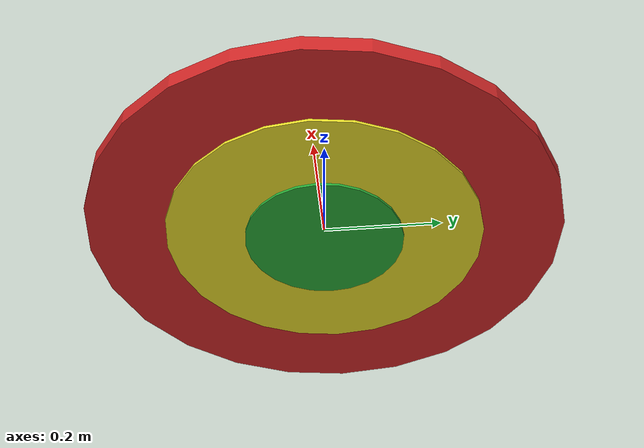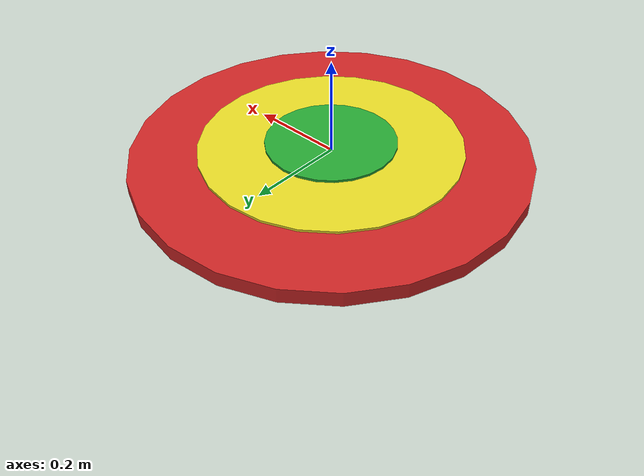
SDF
<?xml version='1.0'?>
<sdf version='1.6'>
  <model name='Target'>
    <link name='green'>
      <pose frame=''>0 0 0 0 -0 0</pose>
      <self_collide>0</self_collide>
      <enable_wind>0</enable_wind>
      <kinematic>0</kinematic>
      <visual name='visual'>
        <geometry>
          <cylinder>
            <radius>0.135027</radius>
            <length>0.05</length>
          </cylinder>
        </geometry>
        <material>
          <script>
            <uri>file://media/materials/scripts/gazebo.material</uri>
            <name>Gazebo/Green</name>
          </script>
          <ambient>1 1 1 1</ambient>
          <shader type='pixel'/>
        </material>
        <cast_shadows>0</cast_shadows>
        <transparency>0</transparency>
        <pose frame=''>0 0 0 0 -0 0</pose>
      </visual>
    </link>
    <link name='red'>
      <pose frame=''>0 0 0 0 -0 0</pose>
      <self_collide>0</self_collide>
      <enable_wind>0</enable_wind>
      <kinematic>0</kinematic>
      <visual name='visual'>
        <geometry>
          <cylinder>
            <radius>0.40508</radius>
            <length>0.03</length>
          </cylinder>
        </geometry>
        <material>
          <script>
            <uri>file://media/materials/scripts/gazebo.material</uri>
            <name>Gazebo/Red</name>
          </script>
          <ambient>1 1 1 1</ambient>
          <shader type='pixel'/>
        </material>
        <cast_shadows>0</cast_shadows>
        <transparency>0</transparency>
        <pose frame=''>0 0 0 0 -0 0</pose>
      </visual>
    </link>
    <link name='yellow'>
      <pose frame=''>0 0 0 0 -0 0</pose>
      <self_collide>0</self_collide>
      <enable_wind>0</enable_wind>
      <kinematic>0</kinematic>
      <visual name='visual'>
        <geometry>
          <cylinder>
            <radius>0.270053</radius>
            <length>0.04</length>
          </cylinder>
        </geometry>
        <material>
          <script>
            <uri>file://media/materials/scripts/gazebo.material</uri>
            <name>Gazebo/Yellow</name>
          </script>
          <ambient>1 1 1 1</ambient>
          <shader type='pixel'/>
        </material>
        <cast_shadows>0</cast_shadows>
        <transparency>0</transparency>
        <pose frame=''>0 0 0 0 -0 0</pose>
      </visual>
    </link>
    <static>1</static>
    <allow_auto_disable>1</allow_auto_disable>
  </model>
</sdf>
